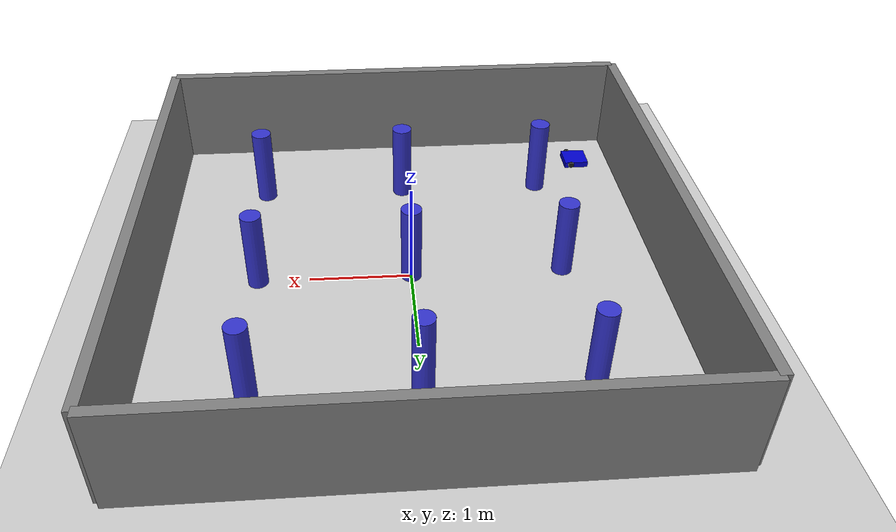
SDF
<?xml version="1.0" ?>
<sdf version="1.8">
  <world name="columns_world">

    <plugin filename="gz-sim-physics-system"           name="gz::sim::systems::Physics"/>
    <plugin filename="gz-sim-user-commands-system"     name="gz::sim::systems::UserCommands"/>
    <plugin filename="gz-sim-scene-broadcaster-system" name="gz::sim::systems::SceneBroadcaster"/>
    <plugin filename="gz-sim-sensors-system"           name="gz::sim::systems::Sensors">
      <render_engine>ogre2</render_engine>
    </plugin>
    <plugin filename="gz-sim-imu-system"               name="gz::sim::systems::Imu"/>

    <light name="sun" type="directional">
      <pose>0 0 10 0 0 0</pose>
      <diffuse>0.9 0.9 0.9 1</diffuse>
      <specular>0.2 0.2 0.2 1</specular>
      <direction>-0.5 0.1 -0.9</direction>
      <cast_shadows>true</cast_shadows>
    </light>
    <light name="light_fill" type="point">
      <pose>0 0 4 0 0 0</pose>
      <diffuse>0.5 0.5 0.5 1</diffuse>
      <attenuation><range>20</range><constant>0.5</constant><linear>0.01</linear><quadratic>0.001</quadratic></attenuation>
    </light>

    <model name="ground_plane">
      <static>true</static>
      <link name="link">
        <collision name="collision">
          <geometry><plane><normal>0 0 1</normal><size>20 20</size></plane></geometry>
        </collision>
        <visual name="visual">
          <geometry><plane><normal>0 0 1</normal><size>20 20</size></plane></geometry>
          <material><ambient>0.8 0.8 0.8 1</ambient><diffuse>0.8 0.8 0.8 1</diffuse></material>
        </visual>
      </link>
    </model>

    <!-- ══════════════════════════════════════════════
         Enclosing walls  (5 m x 5 m arena)
         ══════════════════════════════════════════════ -->

    <model name="wall_north">
      <static>true</static><pose>0 2.5 0.5 0 0 0</pose>
      <link name="link">
        <collision name="col"><geometry><box><size>5.0 0.1 1.0</size></box></geometry></collision>
        <visual name="vis"><geometry><box><size>5.0 0.1 1.0</size></box></geometry>
          <material><ambient>0.5 0.5 0.5 1</ambient><diffuse>0.5 0.5 0.5 1</diffuse></material></visual>
      </link>
    </model>

    <model name="wall_south">
      <static>true</static><pose>0 -2.5 0.5 0 0 0</pose>
      <link name="link">
        <collision name="col"><geometry><box><size>5.0 0.1 1.0</size></box></geometry></collision>
        <visual name="vis"><geometry><box><size>5.0 0.1 1.0</size></box></geometry>
          <material><ambient>0.5 0.5 0.5 1</ambient><diffuse>0.5 0.5 0.5 1</diffuse></material></visual>
      </link>
    </model>

    <model name="wall_east">
      <static>true</static><pose>2.5 0 0.5 0 0 0</pose>
      <link name="link">
        <collision name="col"><geometry><box><size>0.1 5.0 1.0</size></box></geometry></collision>
        <visual name="vis"><geometry><box><size>0.1 5.0 1.0</size></box></geometry>
          <material><ambient>0.5 0.5 0.5 1</ambient><diffuse>0.5 0.5 0.5 1</diffuse></material></visual>
      </link>
    </model>

    <model name="wall_west">
      <static>true</static><pose>-2.5 0 0.5 0 0 0</pose>
      <link name="link">
        <collision name="col"><geometry><box><size>0.1 5.0 1.0</size></box></geometry></collision>
        <visual name="vis"><geometry><box><size>0.1 5.0 1.0</size></box></geometry>
          <material><ambient>0.5 0.5 0.5 1</ambient><diffuse>0.5 0.5 0.5 1</diffuse></material></visual>
      </link>
    </model>

    <!-- ══════════════════════════════════════════════
         9 column obstacles in a 3 x 3 grid
         0.20 m diameter, 0.80 m tall, 1.5 m apart
         ══════════════════════════════════════════════ -->

    <model name="col_1_1">
      <static>true</static><pose>-1.5 -1.5 0.4 0 0 0</pose>
      <link name="link">
        <collision name="col"><geometry><cylinder><radius>0.10</radius><length>0.80</length></cylinder></geometry></collision>
        <visual name="vis"><geometry><cylinder><radius>0.10</radius><length>0.80</length></cylinder></geometry>
          <material><ambient>0.2 0.2 0.8 1</ambient><diffuse>0.2 0.2 0.8 1</diffuse></material></visual>
      </link>
    </model>
    <model name="col_1_2">
      <static>true</static><pose>0.0 -1.5 0.4 0 0 0</pose>
      <link name="link">
        <collision name="col"><geometry><cylinder><radius>0.10</radius><length>0.80</length></cylinder></geometry></collision>
        <visual name="vis"><geometry><cylinder><radius>0.10</radius><length>0.80</length></cylinder></geometry>
          <material><ambient>0.2 0.2 0.8 1</ambient><diffuse>0.2 0.2 0.8 1</diffuse></material></visual>
      </link>
    </model>
    <model name="col_1_3">
      <static>true</static><pose>1.5 -1.5 0.4 0 0 0</pose>
      <link name="link">
        <collision name="col"><geometry><cylinder><radius>0.10</radius><length>0.80</length></cylinder></geometry></collision>
        <visual name="vis"><geometry><cylinder><radius>0.10</radius><length>0.80</length></cylinder></geometry>
          <material><ambient>0.2 0.2 0.8 1</ambient><diffuse>0.2 0.2 0.8 1</diffuse></material></visual>
      </link>
    </model>
    <model name="col_2_1">
      <static>true</static><pose>-1.5 0.0 0.4 0 0 0</pose>
      <link name="link">
        <collision name="col"><geometry><cylinder><radius>0.10</radius><length>0.80</length></cylinder></geometry></collision>
        <visual name="vis"><geometry><cylinder><radius>0.10</radius><length>0.80</length></cylinder></geometry>
          <material><ambient>0.2 0.2 0.8 1</ambient><diffuse>0.2 0.2 0.8 1</diffuse></material></visual>
      </link>
    </model>
    <model name="col_2_2">
      <static>true</static><pose>0.0 0.0 0.4 0 0 0</pose>
      <link name="link">
        <collision name="col"><geometry><cylinder><radius>0.10</radius><length>0.80</length></cylinder></geometry></collision>
        <visual name="vis"><geometry><cylinder><radius>0.10</radius><length>0.80</length></cylinder></geometry>
          <material><ambient>0.2 0.2 0.8 1</ambient><diffuse>0.2 0.2 0.8 1</diffuse></material></visual>
      </link>
    </model>
    <model name="col_2_3">
      <static>true</static><pose>1.5 0.0 0.4 0 0 0</pose>
      <link name="link">
        <collision name="col"><geometry><cylinder><radius>0.10</radius><length>0.80</length></cylinder></geometry></collision>
        <visual name="vis"><geometry><cylinder><radius>0.10</radius><length>0.80</length></cylinder></geometry>
          <material><ambient>0.2 0.2 0.8 1</ambient><diffuse>0.2 0.2 0.8 1</diffuse></material></visual>
      </link>
    </model>
    <model name="col_3_1">
      <static>true</static><pose>-1.5 1.5 0.4 0 0 0</pose>
      <link name="link">
        <collision name="col"><geometry><cylinder><radius>0.10</radius><length>0.80</length></cylinder></geometry></collision>
        <visual name="vis"><geometry><cylinder><radius>0.10</radius><length>0.80</length></cylinder></geometry>
          <material><ambient>0.2 0.2 0.8 1</ambient><diffuse>0.2 0.2 0.8 1</diffuse></material></visual>
      </link>
    </model>
    <model name="col_3_2">
      <static>true</static><pose>0.0 1.5 0.4 0 0 0</pose>
      <link name="link">
        <collision name="col"><geometry><cylinder><radius>0.10</radius><length>0.80</length></cylinder></geometry></collision>
        <visual name="vis"><geometry><cylinder><radius>0.10</radius><length>0.80</length></cylinder></geometry>
          <material><ambient>0.2 0.2 0.8 1</ambient><diffuse>0.2 0.2 0.8 1</diffuse></material></visual>
      </link>
    </model>
    <model name="col_3_3">
      <static>true</static><pose>1.5 1.5 0.4 0 0 0</pose>
      <link name="link">
        <collision name="col"><geometry><cylinder><radius>0.10</radius><length>0.80</length></cylinder></geometry></collision>
        <visual name="vis"><geometry><cylinder><radius>0.10</radius><length>0.80</length></cylinder></geometry>
          <material><ambient>0.2 0.2 0.8 1</ambient><diffuse>0.2 0.2 0.8 1</diffuse></material></visual>
      </link>
    </model>

    <model name="waffle">
      <pose>-2.0 -2.0 0.01 0 0 0</pose>

      <link name="base_footprint"/>

      <joint name="base_joint" type="fixed">
        <parent>base_footprint</parent>
        <child>base_link</child>
        <pose>0 0 0.010 0 0 0</pose>
      </joint>

      <link name="base_link">
        <inertial>
          <mass>1.3729096</mass>
          <inertia><ixx>8.7002e-3</ixx><ixy>-4.24e-5</ixy><ixz>1.4546e-5</ixz>
                   <iyy>1.0940e-2</iyy><iyz>-2.834e-7</iyz><izz>1.2836e-2</izz></inertia>
        </inertial>
        <collision name="base_collision">
          <pose>-0.064 0 0.047 0 0 0</pose>
          <geometry><box><size>0.266 0.266 0.094</size></box></geometry>
        </collision>
        <visual name="base_visual">
          <pose>-0.064 0 0 0 0 0</pose>
          <geometry><box><size>0.266 0.266 0.094</size></box></geometry>
          <material><ambient>0.0 0.0 0.8 1</ambient><diffuse>0.0 0.0 0.8 1</diffuse></material>
        </visual>
      </link>

      <joint name="wheel_left_joint" type="revolute">
        <parent>base_link</parent><child>wheel_left_link</child>
        <pose>0 0.144 0.023 -1.5707963 0 0</pose>
        <axis><xyz>0 0 1</xyz><limit><lower>-1e16</lower><upper>1e16</upper></limit></axis>
      </joint>
      <link name="wheel_left_link">
        <pose>0 0.144 0.023 -1.5707963 0 0</pose>
        <inertial><mass>0.1</mass><inertia><ixx>1.1175e-5</ixx><ixy>0</ixy><ixz>0</ixz><iyy>1.1175e-5</iyy><iyz>0</iyz><izz>2.0250e-5</izz></inertia></inertial>
        <collision name="col"><geometry><cylinder><radius>0.033</radius><length>0.018</length></cylinder></geometry></collision>
        <visual name="vis"><geometry><cylinder><radius>0.033</radius><length>0.018</length></cylinder></geometry>
          <material><ambient>0.1 0.1 0.1 1</ambient><diffuse>0.1 0.1 0.1 1</diffuse></material></visual>
      </link>

      <joint name="wheel_right_joint" type="revolute">
        <parent>base_link</parent><child>wheel_right_link</child>
        <pose>0 -0.144 0.023 -1.5707963 0 0</pose>
        <axis><xyz>0 0 1</xyz><limit><lower>-1e16</lower><upper>1e16</upper></limit></axis>
      </joint>
      <link name="wheel_right_link">
        <pose>0 -0.144 0.023 -1.5707963 0 0</pose>
        <inertial><mass>0.1</mass><inertia><ixx>1.1175e-5</ixx><ixy>0</ixy><ixz>0</ixz><iyy>1.1175e-5</iyy><iyz>0</iyz><izz>2.0250e-5</izz></inertia></inertial>
        <collision name="col"><geometry><cylinder><radius>0.033</radius><length>0.018</length></cylinder></geometry></collision>
        <visual name="vis"><geometry><cylinder><radius>0.033</radius><length>0.018</length></cylinder></geometry>
          <material><ambient>0.1 0.1 0.1 1</ambient><diffuse>0.1 0.1 0.1 1</diffuse></material></visual>
      </link>

      <joint name="caster_front_joint" type="ball">
        <parent>base_link</parent><child>caster_front_link</child>
      </joint>
      <link name="caster_front_link">
        <pose>0.177 0 0.023 0 0 0</pose>
        <inertial><mass>0.001</mass><inertia><ixx>1e-9</ixx><ixy>0</ixy><ixz>0</ixz><iyy>1e-9</iyy><iyz>0</iyz><izz>1e-9</izz></inertia></inertial>
        <collision name="col"><geometry><sphere><radius>0.005</radius></sphere></geometry>
          <surface><friction><ode><mu>0</mu><mu2>0</mu2></ode></friction></surface></collision>
      </link>

      <joint name="camera_joint" type="fixed">
        <parent>base_link</parent><child>camera_link</child>
        <pose>0.064 -0.065 0.094 0 0 0</pose>
      </joint>
      <link name="camera_link">
        <pose>0.064 -0.065 0.094 0 0 0</pose>
        <inertial><mass>0.001</mass><inertia><ixx>1e-9</ixx><ixy>0</ixy><ixz>0</ixz><iyy>1e-9</iyy><iyz>0</iyz><izz>1e-9</izz></inertia></inertial>
        <sensor name="camera" type="camera">
          <always_on>1</always_on>
          <update_rate>15</update_rate>
          <camera>
            <horizontal_fov>1.3962634</horizontal_fov>
            <image><width>640</width><height>480</height><format>R8G8B8</format></image>
            <clip><near>0.02</near><far>300</far></clip>
          </camera>
          <topic>/camera</topic>
        </sensor>
      </link>

      <plugin filename="gz-sim-diff-drive-system" name="gz::sim::systems::DiffDrive">
        <left_joint>wheel_left_joint</left_joint>
        <right_joint>wheel_right_joint</right_joint>
        <wheel_separation>0.287</wheel_separation>
        <wheel_radius>0.033</wheel_radius>
        <max_linear_velocity>0.26</max_linear_velocity>
        <max_angular_velocity>1.82</max_angular_velocity>
        <topic>/model/waffle/cmd_vel</topic>
        <odom_topic>/model/waffle/odometry</odom_topic>
        <frame_id>odom</frame_id>
        <child_frame_id>base_footprint</child_frame_id>
      </plugin>

    </model>

  </world>
</sdf>
